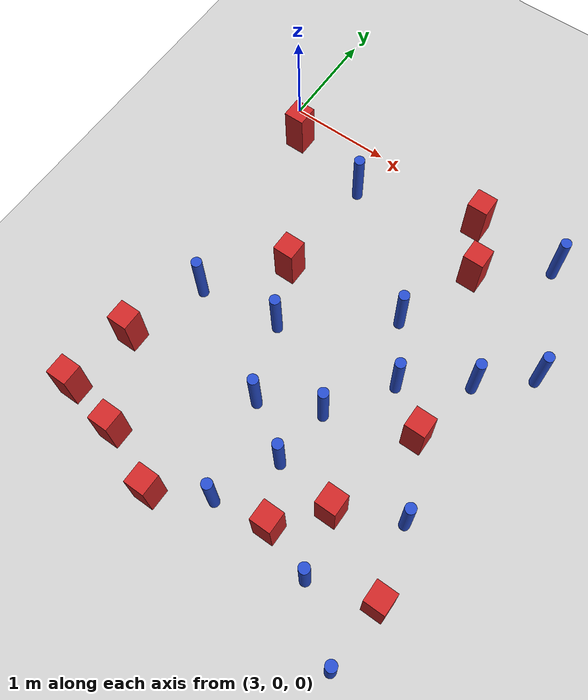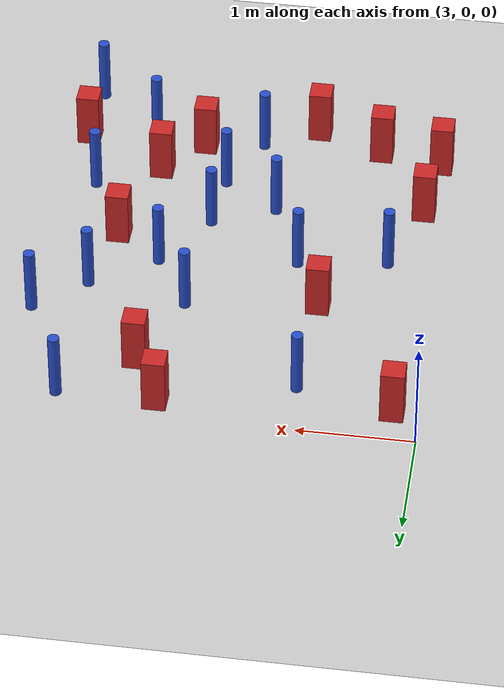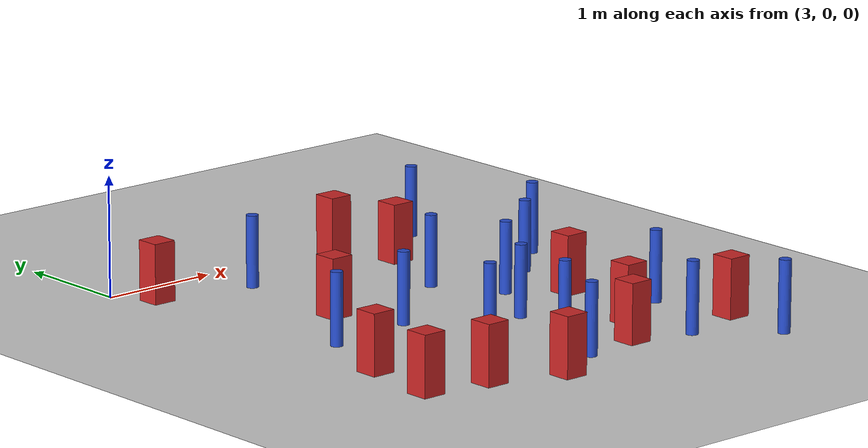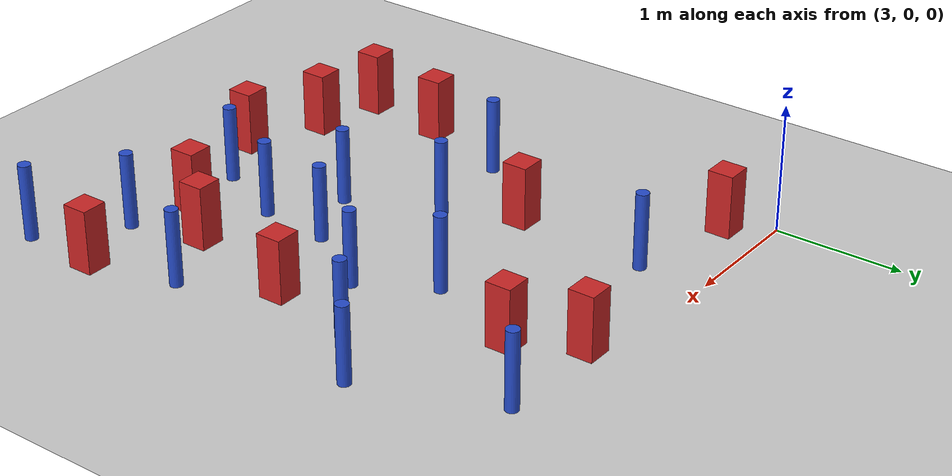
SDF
<sdf version="1.6">
 <world name="default">
  <model name="ground_plane">
   <static>1</static>
   <link name="link">
    <collision name="collision">
     <geometry><plane><normal>0 0 1</normal><size>100 100</size></plane></geometry>
     <surface><friction><ode><mu>100</mu><mu2>50</mu2></ode></friction></surface>
    </collision>
    <visual name="visual">
     <cast_shadows>0</cast_shadows>
     <geometry><plane><normal>0 0 1</normal><size>100 100</size></plane></geometry>
     <material>
      <ambient>1.0 1.0 1.0 1.0</ambient>
      <diffuse>0.8 0.8 0.8 1.0</diffuse>
      <specular>0.01 0.01 0.01 1.000000</specular>
     </material>
    </visual>
   </link>
  </model>
  <model name="pole_obstacle6">
   <static>true</static>
   <pose>5.07800445016 -2.56818857916 2.88873142074e-08 -9.90536690245e-09 4.6021994898e-07 -1.20965994966e-07</pose>
   <link name="link">
    <pose>0 0 0.3 0 -0 0</pose>
    <inertial>
     <mass>1</mass>
     <inertia><ixx>0.145833</ixx><ixy>0</ixy><ixz>0</ixz><iyy>0.145833</iyy><iyz>0</iyz><izz>0.125</izz></inertia>
    </inertial>
    <collision name="collision">
     <geometry><cylinder><radius>0.05</radius><length>.6</length></cylinder></geometry>
    </collision>
    <visual name="visual">
     <geometry><cylinder><radius>0.05</radius><length>.6</length></cylinder></geometry>
     <material>
      <script><name>Gazebo/Blue</name><uri>file://media/materials/scripts/gazebo.material</uri></script>
     </material>
    </visual>
   </link>
  </model>
  <model name="pole_obstacle11">
   <static>true</static>
   <pose>5.45333464974 -1.98299385944 2.88873142074e-08 -9.90536689117e-09 4.60219949006e-07 -1.20965994949e-07</pose>
   <link name="link">
    <pose>0 0 0.3 0 -0 0</pose>
    <inertial>
     <mass>1</mass>
     <inertia><ixx>0.145833</ixx><ixy>0</ixy><ixz>0</ixz><iyy>0.145833</iyy><iyz>0</iyz><izz>0.125</izz></inertia>
    </inertial>
    <collision name="collision">
     <geometry><cylinder><radius>0.05</radius><length>.6</length></cylinder></geometry>
    </collision>
    <visual name="visual">
     <geometry><cylinder><radius>0.05</radius><length>.6</length></cylinder></geometry>
     <material>
      <script><name>Gazebo/Blue</name><uri>file://media/materials/scripts/gazebo.material</uri></script>
     </material>
    </visual>
   </link>
  </model>
  <model name="pole_obstacle43">
   <static>true</static>
   <pose>5.76211424537 -3.80005546341 2.88873142074e-08 -9.90536690245e-09 4.6021994898e-07 -1.20965994966e-07</pose>
   <link name="link">
    <pose>0 0 0.3 0 -0 0</pose>
    <inertial>
     <mass>1</mass>
     <inertia><ixx>0.145833</ixx><ixy>0</ixy><ixz>0</ixz><iyy>0.145833</iyy><iyz>0</iyz><izz>0.125</izz></inertia>
    </inertial>
    <collision name="collision">
     <geometry><cylinder><radius>0.05</radius><length>.6</length></cylinder></geometry>
    </collision>
    <visual name="visual">
     <geometry><cylinder><radius>0.05</radius><length>.6</length></cylinder></geometry>
     <material>
      <script><name>Gazebo/Blue</name><uri>file://media/materials/scripts/gazebo.material</uri></script>
     </material>
    </visual>
   </link>
  </model>
  <model name="square_post_obstacle50">
   <static>true</static>
   <pose>5.62051604594 -3.22619935053 8.22691968438e-08 7.2212513382e-06 -7.54495500217e-07 2.29674213826e-05</pose>
   <link name="link">
    <pose>0 0 0.25 0 -0 0</pose>
    <inertial>
     <mass>100</mass>
     <inertia>
      <ixx>0.166667</ixx>
      <ixy>0</ixy>
      <ixz>0</ixz>
      <iyy>0.166667</iyy>
      <iyz>0</iyz>
      <izz>0.166667</izz>
     </inertia>
    </inertial>
    <collision name="collision"><geometry><box><size>.2 .2 .5</size></box></geometry></collision>
    <visual name="visual">
     <geometry><box><size>.2 .2 .5</size></box></geometry>
     <material>
      <script><name>Gazebo/Red</name><uri>file://media/materials/scripts/gazebo.material</uri></script>
     </material>
    </visual>
   </link>
  </model>
  <model name="square_post_obstacle52">
   <static>true</static>
   <pose>5.43940688298 -0.665224420647 8.22691968438e-08 7.2212513382e-06 -7.54495500217e-07 2.29674213826e-05</pose>
   <link name="link">
    <pose>0 0 0.25 0 -0 0</pose>
    <inertial>
     <mass>100</mass>
     <inertia>
      <ixx>0.166667</ixx>
      <ixy>0</ixy>
      <ixz>0</ixz>
      <iyy>0.166667</iyy>
      <iyz>0</iyz>
      <izz>0.166667</izz>
     </inertia>
    </inertial>
    <collision name="collision"><geometry><box><size>.2 .2 .5</size></box></geometry></collision>
    <visual name="visual">
     <geometry><box><size>.2 .2 .5</size></box></geometry>
     <material>
      <script><name>Gazebo/Red</name><uri>file://media/materials/scripts/gazebo.material</uri></script>
     </material>
    </visual>
   </link>
  </model>
  <model name="pole_obstacle57">
   <static>true</static>
   <pose>5.02587626868 -3.1314231268 2.88873142074e-08 -9.90536690245e-09 4.6021994898e-07 -1.20965994966e-07</pose>
   <link name="link">
    <pose>0 0 0.3 0 -0 0</pose>
    <inertial>
     <mass>1</mass>
     <inertia><ixx>0.145833</ixx><ixy>0</ixy><ixz>0</ixz><iyy>0.145833</iyy><iyz>0</iyz><izz>0.125</izz></inertia>
    </inertial>
    <collision name="collision">
     <geometry><cylinder><radius>0.05</radius><length>.6</length></cylinder></geometry>
    </collision>
    <visual name="visual">
     <geometry><cylinder><radius>0.05</radius><length>.6</length></cylinder></geometry>
     <material>
      <script><name>Gazebo/Blue</name><uri>file://media/materials/scripts/gazebo.material</uri></script>
     </material>
    </visual>
   </link>
  </model>
  <model name="square_post_obstacle76">
   <static>true</static>
   <pose>3.22528525514 -0.31354746156 8.22691968438e-08 7.2212513382e-06 -7.54495500217e-07 2.29674213826e-05</pose>
   <link name="link">
    <pose>0 0 0.25 0 -0 0</pose>
    <inertial>
     <mass>100</mass>
     <inertia>
      <ixx>0.166667</ixx>
      <ixy>0</ixy>
      <ixz>0</ixz>
      <iyy>0.166667</iyy>
      <iyz>0</iyz>
      <izz>0.166667</izz>
     </inertia>
    </inertial>
    <collision name="collision"><geometry><box><size>.2 .2 .5</size></box></geometry></collision>
    <visual name="visual">
     <geometry><box><size>.2 .2 .5</size></box></geometry>
     <material>
      <script><name>Gazebo/Red</name><uri>file://media/materials/scripts/gazebo.material</uri></script>
     </material>
    </visual>
   </link>
  </model>
  <model name="pole_obstacle73">
   <static>true</static>
   <pose>6.43886423955 -1.22574422444 2.88873142074e-08 -9.90536689445e-09 4.60219948999e-07 -1.20965994956e-07</pose>
   <link name="link">
    <pose>0 0 0.3 0 -0 0</pose>
    <inertial>
     <mass>1</mass>
     <inertia><ixx>0.145833</ixx><ixy>0</ixy><ixz>0</ixz><iyy>0.145833</iyy><iyz>0</iyz><izz>0.125</izz></inertia>
    </inertial>
    <collision name="collision">
     <geometry><cylinder><radius>0.05</radius><length>.6</length></cylinder></geometry>
    </collision>
    <visual name="visual">
     <geometry><cylinder><radius>0.05</radius><length>.6</length></cylinder></geometry>
     <material>
      <script><name>Gazebo/Blue</name><uri>file://media/materials/scripts/gazebo.material</uri></script>
     </material>
    </visual>
   </link>
  </model>
  <model name="pole_obstacle74">
   <static>true</static>
   <pose>6.32249126544 -4.25089704022 2.88873142074e-08 -9.90536690842e-09 4.60219948965e-07 -1.20965994976e-07</pose>
   <link name="link">
    <pose>0 0 0.3 0 -0 0</pose>
    <inertial>
     <mass>1</mass>
     <inertia><ixx>0.145833</ixx><ixy>0</ixy><ixz>0</ixz><iyy>0.145833</iyy><iyz>0</iyz><izz>0.125</izz></inertia>
    </inertial>
    <collision name="collision">
     <geometry><cylinder><radius>0.05</radius><length>.6</length></cylinder></geometry>
    </collision>
    <visual name="visual">
     <geometry><cylinder><radius>0.05</radius><length>.6</length></cylinder></geometry>
     <material>
      <script><name>Gazebo/Blue</name><uri>file://media/materials/scripts/gazebo.material</uri></script>
     </material>
    </visual>
   </link>
  </model>
  <model name="pole_obstacle76">
   <static>true</static>
   <pose>4.04955613045 -0.508050693157 2.88873142074e-08 -9.9053668967e-09 4.60219948993e-07 -1.20965994959e-07</pose>
   <link name="link">
    <pose>0 0 0.3 0 -0 0</pose>
    <inertial>
     <mass>1</mass>
     <inertia><ixx>0.145833</ixx><ixy>0</ixy><ixz>0</ixz><iyy>0.145833</iyy><iyz>0</iyz><izz>0.125</izz></inertia>
    </inertial>
    <collision name="collision">
     <geometry><cylinder><radius>0.05</radius><length>.6</length></cylinder></geometry>
    </collision>
    <visual name="visual">
     <geometry><cylinder><radius>0.05</radius><length>.6</length></cylinder></geometry>
     <material>
      <script><name>Gazebo/Blue</name><uri>file://media/materials/scripts/gazebo.material</uri></script>
     </material>
    </visual>
   </link>
  </model>
  <model name="pole_obstacle91">
   <static>true</static>
   <pose>3.47403646986 -2.21186572789 2.88873142074e-08 -9.90536690232e-09 4.6021994898e-07 -1.20965994968e-07</pose>
   <link name="link">
    <pose>0 0 0.3 0 -0 0</pose>
    <inertial>
     <mass>1</mass>
     <inertia><ixx>0.145833</ixx><ixy>0</ixy><ixz>0</ixz><iyy>0.145833</iyy><iyz>0</iyz><izz>0.125</izz></inertia>
    </inertial>
    <collision name="collision">
     <geometry><cylinder><radius>0.05</radius><length>.6</length></cylinder></geometry>
    </collision>
    <visual name="visual">
     <geometry><cylinder><radius>0.05</radius><length>.6</length></cylinder></geometry>
     <material>
      <script><name>Gazebo/Blue</name><uri>file://media/materials/scripts/gazebo.material</uri></script>
     </material>
    </visual>
   </link>
  </model>
  <model name="square_post_obstacle84">
   <static>true</static>
   <pose>3.69395237723 -3.72712531034 8.22691968438e-08 7.2212513382e-06 -7.54495500217e-07 2.29674213826e-05</pose>
   <link name="link">
    <pose>0 0 0.25 0 -0 0</pose>
    <inertial>
     <mass>100</mass>
     <inertia>
      <ixx>0.166667</ixx>
      <ixy>0</ixy>
      <ixz>0</ixz>
      <iyy>0.166667</iyy>
      <iyz>0</iyz>
      <izz>0.166667</izz>
     </inertia>
    </inertial>
    <collision name="collision"><geometry><box><size>.2 .2 .5</size></box></geometry></collision>
    <visual name="visual">
     <geometry><box><size>.2 .2 .5</size></box></geometry>
     <material>
      <script><name>Gazebo/Red</name><uri>file://media/materials/scripts/gazebo.material</uri></script>
     </material>
    </visual>
   </link>
  </model>
  <model name="square_post_obstacle87">
   <static>true</static>
   <pose>4.28241273989 -3.96607354375 8.22691968438e-08 7.2212513382e-06 -7.54495500217e-07 2.29674213826e-05</pose>
   <link name="link">
    <pose>0 0 0.25 0 -0 0</pose>
    <inertial>
     <mass>100</mass>
     <inertia>
      <ixx>0.166667</ixx>
      <ixy>0</ixy>
      <ixz>0</ixz>
      <iyy>0.166667</iyy>
      <iyz>0</iyz>
      <izz>0.166667</izz>
     </inertia>
    </inertial>
    <collision name="collision"><geometry><box><size>.2 .2 .5</size></box></geometry></collision>
    <visual name="visual">
     <geometry><box><size>.2 .2 .5</size></box></geometry>
     <material>
      <script><name>Gazebo/Red</name><uri>file://media/materials/scripts/gazebo.material</uri></script>
     </material>
    </visual>
   </link>
  </model>
  <model name="pole_obstacle99">
   <static>true</static>
   <pose>5.13983535397 -1.43813014883 2.88873142074e-08 -9.90536689445e-09 4.60219948999e-07 -1.20965994956e-07</pose>
   <link name="link">
    <pose>0 0 0.3 0 -0 0</pose>
    <inertial>
     <mass>1</mass>
     <inertia><ixx>0.145833</ixx><ixy>0</ixy><ixz>0</ixz><iyy>0.145833</iyy><iyz>0</iyz><izz>0.125</izz></inertia>
    </inertial>
    <collision name="collision">
     <geometry><cylinder><radius>0.05</radius><length>.6</length></cylinder></geometry>
    </collision>
    <visual name="visual">
     <geometry><cylinder><radius>0.05</radius><length>.6</length></cylinder></geometry>
     <material>
      <script><name>Gazebo/Blue</name><uri>file://media/materials/scripts/gazebo.material</uri></script>
     </material>
    </visual>
   </link>
  </model>
  <model name="pole_obstacle101">
   <static>true</static>
   <pose>4.53423497425 -2.80590181872 2.88873142074e-08 -9.90536690245e-09 4.6021994898e-07 -1.20965994966e-07</pose>
   <link name="link">
    <pose>0 0 0.3 0 -0 0</pose>
    <inertial>
     <mass>1</mass>
     <inertia><ixx>0.145833</ixx><ixy>0</ixy><ixz>0</ixz><iyy>0.145833</iyy><iyz>0</iyz><izz>0.125</izz></inertia>
    </inertial>
    <collision name="collision">
     <geometry><cylinder><radius>0.05</radius><length>.6</length></cylinder></geometry>
    </collision>
    <visual name="visual">
     <geometry><cylinder><radius>0.05</radius><length>.6</length></cylinder></geometry>
     <material>
      <script><name>Gazebo/Blue</name><uri>file://media/materials/scripts/gazebo.material</uri></script>
     </material>
    </visual>
   </link>
  </model>
  <model name="square_post_obstacle101">
   <static>true</static>
   <pose>3.233031009 -2.94264514317 8.22691968438e-08 7.2212513382e-06 -7.54495500217e-07 2.29674213826e-05</pose>
   <link name="link">
    <pose>0 0 0.25 0 -0 0</pose>
    <inertial>
     <mass>100</mass>
     <inertia>
      <ixx>0.166667</ixx>
      <ixy>0</ixy>
      <ixz>0</ixz>
      <iyy>0.166667</iyy>
      <iyz>0</iyz>
      <izz>0.166667</izz>
     </inertia>
    </inertial>
    <collision name="collision"><geometry><box><size>.2 .2 .5</size></box></geometry></collision>
    <visual name="visual">
     <geometry><box><size>.2 .2 .5</size></box></geometry>
     <material>
      <script><name>Gazebo/Red</name><uri>file://media/materials/scripts/gazebo.material</uri></script>
     </material>
    </visual>
   </link>
  </model>
  <model name="pole_obstacle117">
   <static>true</static>
   <pose>6.03585243432 -0.184891750847 2.88873142074e-08 -9.90536689378e-09 4.60219949e-07 -1.20965994955e-07</pose>
   <link name="link">
    <pose>0 0 0.3 0 -0 0</pose>
    <inertial>
     <mass>1</mass>
     <inertia><ixx>0.145833</ixx><ixy>0</ixy><ixz>0</ixz><iyy>0.145833</iyy><iyz>0</iyz><izz>0.125</izz></inertia>
    </inertial>
    <collision name="collision">
     <geometry><cylinder><radius>0.05</radius><length>.6</length></cylinder></geometry>
    </collision>
    <visual name="visual">
     <geometry><cylinder><radius>0.05</radius><length>.6</length></cylinder></geometry>
     <material>
      <script><name>Gazebo/Blue</name><uri>file://media/materials/scripts/gazebo.material</uri></script>
     </material>
    </visual>
   </link>
  </model>
  <model name="square_post_obstacle110">
   <static>true</static>
   <pose>5.28047160154 -3.63027524024 8.22691968438e-08 7.2212513382e-06 -7.54495500217e-07 2.29674213826e-05</pose>
   <link name="link">
    <pose>0 0 0.25 0 -0 0</pose>
    <inertial>
     <mass>100</mass>
     <inertia>
      <ixx>0.166667</ixx>
      <ixy>0</ixy>
      <ixz>0</ixz>
      <iyy>0.166667</iyy>
      <iyz>0</iyz>
      <izz>0.166667</izz>
     </inertia>
    </inertial>
    <collision name="collision"><geometry><box><size>.2 .2 .5</size></box></geometry></collision>
    <visual name="visual">
     <geometry><box><size>.2 .2 .5</size></box></geometry>
     <material>
      <script><name>Gazebo/Red</name><uri>file://media/materials/scripts/gazebo.material</uri></script>
     </material>
    </visual>
   </link>
  </model>
  <model name="square_post_obstacle118">
   <static>true</static>
   <pose>6.35127671707 -3.62929094757 8.22691968438e-08 7.2212513382e-06 -7.54495500217e-07 2.29674213826e-05</pose>
   <link name="link">
    <pose>0 0 0.25 0 -0 0</pose>
    <inertial>
     <mass>100</mass>
     <inertia>
      <ixx>0.166667</ixx>
      <ixy>0</ixy>
      <ixz>0</ixz>
      <iyy>0.166667</iyy>
      <iyz>0</iyz>
      <izz>0.166667</izz>
     </inertia>
    </inertial>
    <collision name="collision"><geometry><box><size>.2 .2 .5</size></box></geometry></collision>
    <visual name="visual">
     <geometry><box><size>.2 .2 .5</size></box></geometry>
     <material>
      <script><name>Gazebo/Red</name><uri>file://media/materials/scripts/gazebo.material</uri></script>
     </material>
    </visual>
   </link>
  </model>
  <model name="square_post_obstacle131">
   <static>true</static>
   <pose>3.14621187689 -3.62011000065 8.22691968438e-08 7.2212513382e-06 -7.54495500217e-07 2.29674213826e-05</pose>
   <link name="link">
    <pose>0 0 0.25 0 -0 0</pose>
    <inertial>
     <mass>100</mass>
     <inertia>
      <ixx>0.166667</ixx>
      <ixy>0</ixy>
      <ixz>0</ixz>
      <iyy>0.166667</iyy>
      <iyz>0</iyz>
      <izz>0.166667</izz>
     </inertia>
    </inertial>
    <collision name="collision"><geometry><box><size>.2 .2 .5</size></box></geometry></collision>
    <visual name="visual">
     <geometry><box><size>.2 .2 .5</size></box></geometry>
     <material>
      <script><name>Gazebo/Red</name><uri>file://media/materials/scripts/gazebo.material</uri></script>
     </material>
    </visual>
   </link>
  </model>
  <model name="square_post_obstacle152">
   <static>true</static>
   <pose>5.85582270249 -2.28581051323 8.22691968438e-08 7.2212513382e-06 -7.54495500217e-07 2.29674213826e-05</pose>
   <link name="link">
    <pose>0 0 0.25 0 -0 0</pose>
    <inertial>
     <mass>100</mass>
     <inertia>
      <ixx>0.166667</ixx>
      <ixy>0</ixy>
      <ixz>0</ixz>
      <iyy>0.166667</iyy>
      <iyz>0</iyz>
      <izz>0.166667</izz>
     </inertia>
    </inertial>
    <collision name="collision"><geometry><box><size>.2 .2 .5</size></box></geometry></collision>
    <visual name="visual">
     <geometry><box><size>.2 .2 .5</size></box></geometry>
     <material>
      <script><name>Gazebo/Red</name><uri>file://media/materials/scripts/gazebo.material</uri></script>
     </material>
    </visual>
   </link>
  </model>
  <model name="square_post_obstacle163">
   <static>true</static>
   <pose>4.00371562733 -1.56601663779 8.22691968438e-08 7.2212513382e-06 -7.54495500217e-07 2.29674213826e-05</pose>
   <link name="link">
    <pose>0 0 0.25 0 -0 0</pose>
    <inertial>
     <mass>100</mass>
     <inertia>
      <ixx>0.166667</ixx>
      <ixy>0</ixy>
      <ixz>0</ixz>
      <iyy>0.166667</iyy>
      <iyz>0</iyz>
      <izz>0.166667</izz>
     </inertia>
    </inertial>
    <collision name="collision"><geometry><box><size>.2 .2 .5</size></box></geometry></collision>
    <visual name="visual">
     <geometry><box><size>.2 .2 .5</size></box></geometry>
     <material>
      <script><name>Gazebo/Red</name><uri>file://media/materials/scripts/gazebo.material</uri></script>
     </material>
    </visual>
   </link>
  </model>
  <model name="square_post_obstacle164">
   <static>true</static>
   <pose>5.1921946662 -0.178683966306 8.22691968438e-08 7.2212513382e-06 -7.54495500217e-07 2.29674213826e-05</pose>
   <link name="link">
    <pose>0 0 0.25 0 -0 0</pose>
    <inertial>
     <mass>100</mass>
     <inertia>
      <ixx>0.166667</ixx>
      <ixy>0</ixy>
      <ixz>0</ixz>
      <iyy>0.166667</iyy>
      <iyz>0</iyz>
      <izz>0.166667</izz>
     </inertia>
    </inertial>
    <collision name="collision"><geometry><box><size>.2 .2 .5</size></box></geometry></collision>
    <visual name="visual">
     <geometry><box><size>.2 .2 .5</size></box></geometry>
     <material>
      <script><name>Gazebo/Red</name><uri>file://media/materials/scripts/gazebo.material</uri></script>
     </material>
    </visual>
   </link>
  </model>
  <model name="pole_obstacle183">
   <static>true</static>
   <pose>4.25186001798 -2.11212015283 2.88873142074e-08 -9.90536690245e-09 4.6021994898e-07 -1.20965994966e-07</pose>
   <link name="link">
    <pose>0 0 0.3 0 -0 0</pose>
    <inertial>
     <mass>1</mass>
     <inertia><ixx>0.145833</ixx><ixy>0</ixy><ixz>0</ixz><iyy>0.145833</iyy><iyz>0</iyz><izz>0.125</izz></inertia>
    </inertial>
    <collision name="collision">
     <geometry><cylinder><radius>0.05</radius><length>.6</length></cylinder></geometry>
    </collision>
    <visual name="visual">
     <geometry><cylinder><radius>0.05</radius><length>.6</length></cylinder></geometry>
     <material>
      <script><name>Gazebo/Blue</name><uri>file://media/materials/scripts/gazebo.material</uri></script>
     </material>
    </visual>
   </link>
  </model>
  <model name="pole_obstacle186">
   <static>true</static>
   <pose>6.00923674977 -1.60302170938 2.88873142074e-08 -9.90536689445e-09 4.60219948999e-07 -1.20965994956e-07</pose>
   <link name="link">
    <pose>0 0 0.3 0 -0 0</pose>
    <inertial>
     <mass>1</mass>
     <inertia><ixx>0.145833</ixx><ixy>0</ixy><ixz>0</ixz><iyy>0.145833</iyy><iyz>0</iyz><izz>0.125</izz></inertia>
    </inertial>
    <collision name="collision">
     <geometry><cylinder><radius>0.05</radius><length>.6</length></cylinder></geometry>
    </collision>
    <visual name="visual">
     <geometry><cylinder><radius>0.05</radius><length>.6</length></cylinder></geometry>
     <material>
      <script><name>Gazebo/Blue</name><uri>file://media/materials/scripts/gazebo.material</uri></script>
     </material>
    </visual>
   </link>
  </model>
  <model name="pole_obstacle210">
   <static>true</static>
   <pose>6.17697020537 -2.95735427238 2.88873142074e-08 -9.90536690245e-09 4.6021994898e-07 -1.20965994966e-07</pose>
   <link name="link">
    <pose>0 0 0.3 0 -0 0</pose>
    <inertial>
     <mass>1</mass>
     <inertia><ixx>0.145833</ixx><ixy>0</ixy><ixz>0</ixz><iyy>0.145833</iyy><iyz>0</iyz><izz>0.125</izz></inertia>
    </inertial>
    <collision name="collision">
     <geometry><cylinder><radius>0.05</radius><length>.6</length></cylinder></geometry>
    </collision>
    <visual name="visual">
     <geometry><cylinder><radius>0.05</radius><length>.6</length></cylinder></geometry>
     <material>
      <script><name>Gazebo/Blue</name><uri>file://media/materials/scripts/gazebo.material</uri></script>
     </material>
    </visual>
   </link>
  </model>
  <model name="pole_obstacle216">
   <static>true</static>
   <pose>4.76225693031 -3.71263877562 2.88873142074e-08 -9.90536690245e-09 4.6021994898e-07 -1.20965994966e-07</pose>
   <link name="link">
    <pose>0 0 0.3 0 -0 0</pose>
    <inertial>
     <mass>1</mass>
     <inertia><ixx>0.145833</ixx><ixy>0</ixy><ixz>0</ixz><iyy>0.145833</iyy><iyz>0</iyz><izz>0.125</izz></inertia>
    </inertial>
    <collision name="collision">
     <geometry><cylinder><radius>0.05</radius><length>.6</length></cylinder></geometry>
    </collision>
    <visual name="visual">
     <geometry><cylinder><radius>0.05</radius><length>.6</length></cylinder></geometry>
     <material>
      <script><name>Gazebo/Blue</name><uri>file://media/materials/scripts/gazebo.material</uri></script>
     </material>
    </visual>
   </link>
  </model>
 </world>
</sdf>
